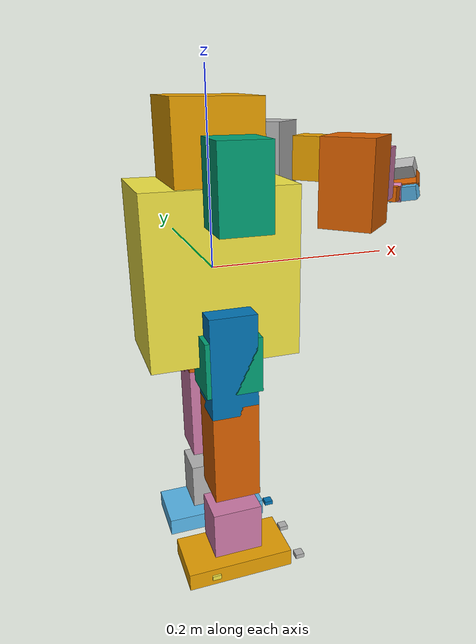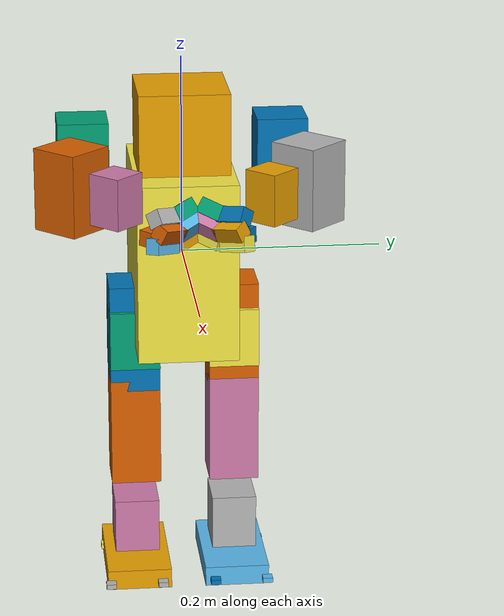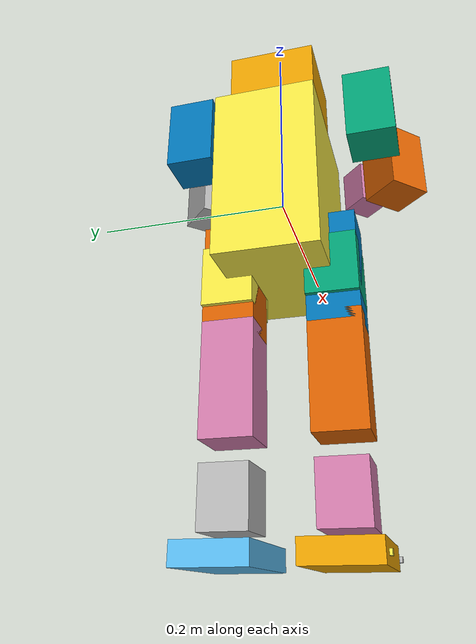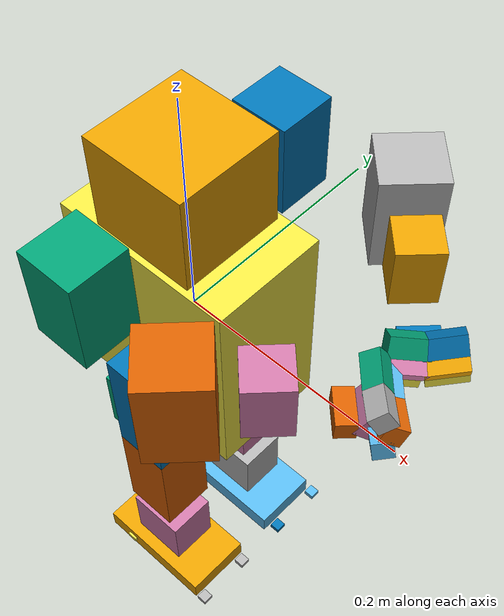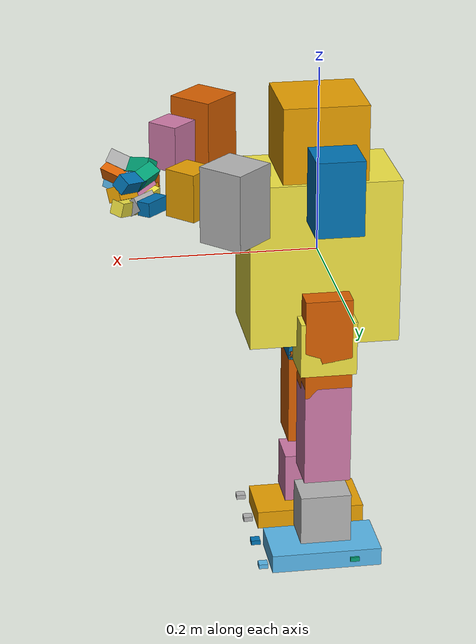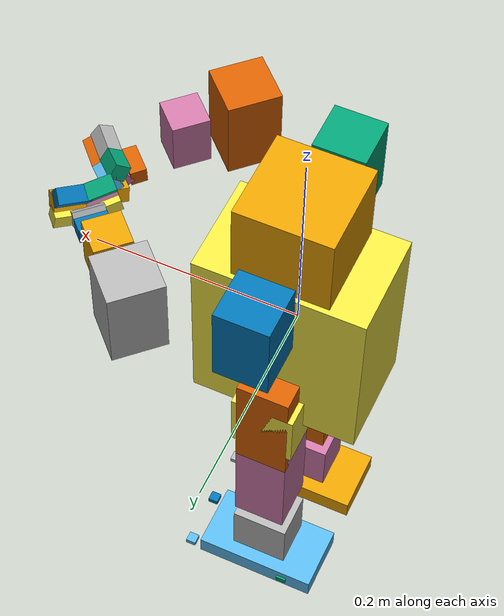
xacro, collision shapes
<?xml version="1.0" ?>
<robot name="nao" xmlns:xacro="http://www.ros.org/wiki/xacro">
  <xacro:arg name="use_gazebo" default="false"/>
  <xacro:include filename="$(find nao_description)/urdf/materials.xacro"/>
  <xacro:include filename="$(find nao_description)/urdf/nao_gazebo.xacro"/>
  <joint name="HeadYaw" type="revolute">
    <parent link="torso"/>
    <child link="Neck"/>
    <origin rpy="0 0 0" xyz="0 0 0.1265"/>
    <axis xyz="0 0 1.0"/>
    <limit effort="1.547" lower="-2.08567" upper="2.08567" velocity="8.26797"/>
    <dynamics damping="0.2" friction="0.05"/>
  </joint>
  <link name="Neck">
    <inertial>
      <mass value="0.1"/>
      <inertia ixx="2.0444274e-05" ixy="2.0020403e-09" ixz="4.0331038e-09" iyy="2.1728386e-05" iyz="-6.7521041e-08" izz="7.0565162e-06"/>
      <origin rpy="0 0 0" xyz="-1e-05 0 -0.02742"/>
    </inertial>
    <visual>
      <geometry>
        <mesh filename="package://nao_description/meshes/visual/HeadYaw.dae" scale="0.1 0.1 0.1"/>
      </geometry>
      <origin rpy="0 0 0" xyz="0 0 0"/>
    </visual>
    <collision>
      <geometry>
        <box size="0.09 0.09 0.09"/>
      </geometry>
      <origin rpy="0 0 0" xyz="0 0 0"/>
    </collision>
  </link>
  <joint name="HeadPitch" type="revolute">
    <parent link="Neck"/>
    <child link="Head"/>
    <origin rpy="0 0 0" xyz="0 0 0"/>
    <axis xyz="0 1.0 0"/>
    <limit effort="1.532" lower="-0.671952" upper="0.514872" velocity="7.19407"/>
    <dynamics damping="0.2" friction="0.05"/>
  </joint>
  <link name="Head">
    <inertial>
      <mass value="0.60533"/>
      <inertia ixx="0.000957766" ixy="8.78814e-06" ixz="5.33702e-06" iyy="0.000816836" iyz="-2.99579e-05" izz="0.000984976"/>
      <origin rpy="0 0 0" xyz="-0.00112 0 0.05258"/>
    </inertial>
    <visual>
      <geometry>
        <mesh filename="package://nao_description/meshes/visual/HeadPitch.dae" scale="0.1 0.1 0.1"/>
      </geometry>
      <origin rpy="0 0 0" xyz="0 0 0"/>
    </visual>
    <collision>
      <geometry>
        <box size="0.09 0.09 0.09"/>
      </geometry>
      <origin rpy="0 0 0" xyz="0 0 0"/>
    </collision>
  </link>
  <joint name="gaze_joint" type="fixed">
    <parent link="Head"/>
    <child link="gaze"/>
    <origin rpy="0 0 0" xyz="0.05871 0 0.06364"/>
  </joint>
  <link name="gaze"/>
  <joint name="LHipYawPitch" type="revolute">
    <parent link="torso"/>
    <child link="LPelvis"/>
    <origin rpy="0 0 0" xyz="0 0.05 -0.085"/>
    <axis xyz="0 0.707106 -0.707106"/>
    <limit effort="3.348" lower="-1.14529" upper="0.740718" velocity="4.16174"/>
    <dynamics damping="0.2" friction="0.05"/>
  </joint>
  <link name="LPelvis">
    <inertial>
      <mass value="0.1"/>
      <inertia ixx="3.352958e-05" ixy="1.545939e-06" ixz="-2.5211718e-06" iyy="6.8235926e-05" iyz="3.9544191e-06" izz="7.1196247e-05"/>
      <origin rpy="0 0 0" xyz="-0.00781 -0.01114 0.02661"/>
    </inertial>
    <visual>
      <geometry>
        <mesh filename="package://nao_description/meshes/visual/LHipYawPitch.dae" scale="0.1 0.1 0.1"/>
      </geometry>
      <origin rpy="0 0 0" xyz="0 0 0"/>
    </visual>
    <collision>
      <geometry>
        <box size="0.06 0.05 0.06"/>
      </geometry>
      <origin rpy="0 0 0" xyz="0 0 0"/>
    </collision>
  </link>
  <joint name="LHipRoll" type="revolute">
    <parent link="LPelvis"/>
    <child link="LHip"/>
    <origin rpy="0 0 0" xyz="0 0 0"/>
    <axis xyz="1.0 0 0"/>
    <limit effort="3.348" lower="-0.379435" upper="0.79046" velocity="4.16174"/>
    <dynamics damping="0.2" friction="0.05"/>
  </joint>
  <link name="LHip">
    <inertial>
      <mass value="0.14053"/>
      <inertia ixx="2.38445e-05" ixy="-6.53605e-07" ixz="7.12893e-06" iyy="6.08246e-05" iyz="-2.14072e-07" izz="5.43691e-05"/>
      <origin rpy="0 0 0" xyz="-0.01549 0.00029 -0.00515"/>
    </inertial>
    <visual>
      <geometry>
        <mesh filename="package://nao_description/meshes/visual/LHipRoll.dae" scale="0.1 0.1 0.1"/>
      </geometry>
      <origin rpy="0 0 0" xyz="0 0 0"/>
    </visual>
    <collision>
      <geometry>
        <box size="0.06 0.05 0.06"/>
      </geometry>
      <origin rpy="0 0 0" xyz="0 0 0"/>
    </collision>
  </link>
  <joint name="LHipPitch" type="revolute">
    <parent link="LHip"/>
    <child link="LThigh"/>
    <origin rpy="0 0 0" xyz="0 0 0"/>
    <axis xyz="0 1.0 0"/>
    <limit effort="3.023" lower="-1.53589" upper="0.48398" velocity="6.40239"/>
    <dynamics damping="0.2" friction="0.05"/>
  </joint>
  <link name="LThigh">
    <inertial>
      <mass value="0.38968"/>
      <inertia ixx="0.000509844" ixy="2.11296e-06" ixz="5.64129e-05" iyy="0.000465358" iyz="-7.91029e-06" izz="0.000301098"/>
      <origin rpy="0 0 0" xyz="0.00138 0.00221 -0.05373"/>
    </inertial>
    <visual>
      <geometry>
        <mesh filename="package://nao_description/meshes/visual/LHipPitch.dae" scale="0.1 0.1 0.1"/>
      </geometry>
      <origin rpy="0 0 0" xyz="0 0 0"/>
    </visual>
    <collision>
      <geometry>
        <box size="0.05 0.05 0.11"/>
      </geometry>
      <origin rpy="0 0 0" xyz="0 0 0"/>
    </collision>
  </link>
  <joint name="LKneePitch" type="revolute">
    <parent link="LThigh"/>
    <child link="LTibia"/>
    <origin rpy="0 0 0" xyz="0 0 -0.1"/>
    <axis xyz="0 1.0 0"/>
    <limit effort="3.023" lower="-0.0923279" upper="2.11255" velocity="6.40239"/>
    <dynamics damping="0.2" friction="0.05"/>
  </joint>
  <link name="LTibia">
    <inertial>
      <mass value="0.30142"/>
      <inertia ixx="0.000446171" ixy="3.70584e-06" ixz="-3.09008e-05" iyy="0.000388084" iyz="6.01953e-06" izz="0.000185516"/>
      <origin rpy="0 0 0" xyz="0.00453 0.00225 -0.04936"/>
    </inertial>
    <visual>
      <geometry>
        <mesh filename="package://nao_description/meshes/visual/LKneePitch.dae" scale="0.1 0.1 0.1"/>
      </geometry>
      <origin rpy="0 0 0" xyz="0 0 0"/>
    </visual>
    <collision>
      <geometry>
        <box size="0.05 0.05 0.11"/>
      </geometry>
      <origin rpy="0 0 0" xyz="0 0 0"/>
    </collision>
  </link>
  <joint name="l_ankle_pitch_joint" type="revolute">
    <parent link="LTibia"/>
    <child link="l_ankle_pitch_link"/>
    <origin rpy="0 0 0" xyz="0 0 -0.1029"/>
    <axis xyz="0 1.0 0"/>
    <limit effort="3.023" lower="-1.18944" upper="0.922581" velocity="6.40239"/>
    <dynamics damping="0.2" friction="0.05"/>
  </joint>
  <link name="l_ankle_pitch_link">
    <inertial>
      <mass value="0.13416"/>
      <inertia ixx="3.22034e-05" ixy="-8.83212e-09" ixz="4.27549e-06" iyy="6.7943e-05" iyz="2.84849e-07" izz="5.48269e-05"/>
      <origin rpy="0 0 0" xyz="0.00045 0.00029 0.00685"/>
    </inertial>
    <visual>
      <geometry>
        <mesh filename="package://nao_description/meshes/visual/LAnklePitch.dae" scale="0.1 0.1 0.1"/>
      </geometry>
      <origin rpy="0 0 0" xyz="0 0 0"/>
    </visual>
    <collision>
      <geometry>
        <box size="0.055 0.045 0.055"/>
      </geometry>
      <origin rpy="0 0 0" xyz="0 0 0"/>
    </collision>
  </link>
  <joint name="LAnkleRoll" type="revolute">
    <parent link="l_ankle_pitch_link"/>
    <child link="l_ankle"/>
    <origin rpy="0 0 0" xyz="0 0 0"/>
    <axis xyz="1.0 0 0"/>
    <limit effort="3.348" lower="-0.397761" upper="0.768992" velocity="4.16174"/>
    <dynamics damping="0.2" friction="0.05"/>
  </joint>
  <link name="l_ankle">
    <inertial>
      <mass value="0.17184"/>
      <inertia ixx="8.72911e-05" ixy="8.71925e-06" ixz="-2.10563e-06" iyy="0.000353024" iyz="3.73459e-07" izz="0.000412846"/>
      <origin rpy="0 0 0" xyz="0.02542 0.0033 -0.03239"/>
    </inertial>
    <visual>
      <geometry>
        <mesh filename="package://nao_description/meshes/visual/LAnkleRoll.dae" scale="0.1 0.1 0.1"/>
      </geometry>
      <origin rpy="0 0 0" xyz="0 0 0"/>
    </visual>
    <collision>
      <geometry>
        <box size="0.055 0.045 0.055"/>
      </geometry>
      <origin rpy="0 0 0" xyz="0 0 0"/>
    </collision>
  </link>
  <joint name="LLeg_effector_fixedjoint" type="fixed">
    <parent link="l_ankle"/>
    <child link="l_sole"/>
    <origin rpy="0 0 0" xyz="0 0 -0.04511"/>
    <axis xyz="0 0 0"/>
  </joint>
  <link name="l_sole">
    <inertial>
      <origin xyz="0 0 0" rpy="0 0 0"/>
      <mass value="0.12"/>
      <inertia ixx="4.625e-05" iyy="0.000148" izz="0.00018625" ixy="0" ixz="0" iyz="0"/>
    </inertial>
    <collision>
      <geometry>
        <box size="0.12 0.065 0.02"/>
      </geometry>
      <origin xyz="0.0 0.0 0.0" rpy="0 0 0"/>
    </collision>
  </link>
  <joint name="RHipYawPitch" type="revolute">
    <parent link="torso"/>
    <child link="RPelvis"/>
    <origin rpy="0 0 0" xyz="0 -0.05 -0.085"/>
    <axis xyz="0 0.707106 0.707106"/>
    <limit effort="3.348" lower="-1.14529" upper="0.740718" velocity="4.16174"/>
    <xacro:unless value="$(arg use_gazebo)">
      <mimic joint="LHipYawPitch" multiplier="1.0" offset="0"/>
    </xacro:unless>
    <dynamics damping="0.2" friction="0.05"/>
  </joint>
  <link name="RPelvis">
    <inertial>
      <mass value="0.1"/>
      <inertia ixx="4.566194e-05" ixy="-1.534909e-06" ixz="-2.5396791e-06" iyy="7.4253116e-05" iyz="-1.0036728e-05" izz="7.7303681e-05"/>
      <origin rpy="0 0 0" xyz="-0.00781 0.01114 0.02661"/>
    </inertial>
    <visual>
      <geometry>
        <mesh filename="package://nao_description/meshes/visual/RHipYawPitch.dae" scale="0.1 0.1 0.1"/>
      </geometry>
      <origin rpy="0 0 0" xyz="0 0 0"/>
    </visual>
    <collision>
      <geometry>
        <box size="0.06 0.05 0.06"/>
      </geometry>
      <origin rpy="0 0 0" xyz="0 0 0"/>
    </collision>
  </link>
  <joint name="RHipRoll" type="revolute">
    <parent link="RPelvis"/>
    <child link="RHip"/>
    <origin rpy="0 0 0" xyz="0 0 0"/>
    <axis xyz="1.0 0 0"/>
    <limit effort="3.348" lower="-0.79046" upper="0.379435" velocity="4.16174"/>
    <dynamics damping="0.2" friction="0.05"/>
  </joint>
  <link name="RHip">
    <inertial>
      <mass value="0.14053"/>
      <inertia ixx="2.38475e-05" ixy="6.12085e-07" ixz="7.10235e-06" iyy="6.0824e-05" iyz="2.12392e-07" izz="5.43727e-05"/>
      <origin rpy="0 0 0" xyz="-0.01549 -0.00029 -0.00515"/>
    </inertial>
    <visual>
      <geometry>
        <mesh filename="package://nao_description/meshes/visual/RHipRoll.dae" scale="0.1 0.1 0.1"/>
      </geometry>
      <origin rpy="0 0 0" xyz="0 0 0"/>
    </visual>
    <collision>
      <geometry>
        <box size="0.06 0.05 0.06"/>
      </geometry>
      <origin rpy="0 0 0" xyz="0 0 0"/>
    </collision>
  </link>
  <joint name="RHipPitch" type="revolute">
    <parent link="RHip"/>
    <child link="RThigh"/>
    <origin rpy="0 0 0" xyz="0 0 0"/>
    <axis xyz="0 1.0 0"/>
    <limit effort="3.0226" lower="-1.53589" upper="0.48398" velocity="6.40239"/>
    <dynamics damping="0.2" friction="0.05"/>
  </joint>
  <link name="RThigh">
    <inertial>
      <mass value="0.38968"/>
      <inertia ixx="0.000510607" ixy="-2.02799e-06" ixz="5.69893e-05" iyy="0.0004665" iyz="7.09563e-06" izz="0.000301333"/>
      <origin rpy="0 0 0" xyz="0.00138 -0.00221 -0.05373"/>
    </inertial>
    <visual>
      <geometry>
        <mesh filename="package://nao_description/meshes/visual/RHipPitch.dae" scale="0.1 0.1 0.1"/>
      </geometry>
      <origin rpy="0 0 0" xyz="0 0 0"/>
    </visual>
    <collision>
      <geometry>
        <box size="0.05 0.05 0.11"/>
      </geometry>
      <origin rpy="0 0 0" xyz="0 0 0"/>
    </collision>
  </link>
  <joint name="RKneePitch" type="revolute">
    <parent link="RThigh"/>
    <child link="RTibia"/>
    <origin rpy="0 0 0" xyz="0 0 -0.1"/>
    <axis xyz="0 1.0 0"/>
    <limit effort="3.0226" lower="-0.0923279" upper="2.11255" velocity="6.40239"/>
    <dynamics damping="0.2" friction="0.05"/>
  </joint>
  <link name="RTibia">
    <inertial>
      <mass value="0.30142"/>
      <inertia ixx="0.000446921" ixy="-3.96872e-06" ixz="-3.94009e-05" iyy="0.000387711" iyz="-5.00034e-06" izz="0.000183741"/>
      <origin rpy="0 0 0" xyz="0.00453 -0.00225 -0.04936"/>
    </inertial>
    <visual>
      <geometry>
        <mesh filename="package://nao_description/meshes/visual/RKneePitch.dae" scale="0.1 0.1 0.1"/>
      </geometry>
      <origin rpy="0 0 0" xyz="0 0 0"/>
    </visual>
    <collision>
      <geometry>
        <box size="0.05 0.05 0.11"/>
      </geometry>
      <origin rpy="0 0 0" xyz="0 0 0"/>
    </collision>
  </link>
  <joint name="r_ankle_pitch_joint" type="revolute">
    <parent link="RTibia"/>
    <child link="r_ankle_pitch_link"/>
    <origin rpy="0 0 0" xyz="0 0 -0.1029"/>
    <axis xyz="0 1.0 0"/>
    <limit effort="3.0226" lower="-1.1863" upper="0.932006" velocity="6.40239"/>
    <dynamics damping="0.2" friction="0.05"/>
  </joint>
  <link name="r_ankle_pitch_link">
    <inertial>
      <mass value="0.13416"/>
      <inertia ixx="3.22017e-05" ixy="4.68321e-08" ixz="4.28821e-06" iyy="6.79885e-05" iyz="-2.71089e-07" izz="5.48747e-05"/>
      <origin rpy="0 0 0" xyz="0.00045 -0.00029 0.00685"/>
    </inertial>
    <visual>
      <geometry>
        <mesh filename="package://nao_description/meshes/visual/RAnklePitch.dae" scale="0.1 0.1 0.1"/>
      </geometry>
      <origin rpy="0 0 0" xyz="0 0 0"/>
    </visual>
    <collision>
      <geometry>
        <box size="0.055 0.045 0.055"/>
      </geometry>
      <origin rpy="0 0 0" xyz="0 0 0"/>
    </collision>
  </link>
  <joint name="RAnkleRoll" type="revolute">
    <parent link="r_ankle_pitch_link"/>
    <child link="r_ankle"/>
    <origin rpy="0 0 0" xyz="0 0 0"/>
    <axis xyz="1.0 0 0"/>
    <limit effort="3.348" lower="-0.768992" upper="0.397761" velocity="4.16174"/>
    <dynamics damping="0.2" friction="0.05"/>
  </joint>
  <link name="r_ankle">
    <inertial>
      <mass value="0.17184"/>
      <inertia ixx="8.71513e-05" ixy="-8.53992e-06" ixz="-2.35184e-06" iyy="0.000352156" iyz="-4.81708e-07" izz="0.000412125"/>
      <origin rpy="0 0 0" xyz="0.02542 -0.0033 -0.03239"/>
    </inertial>
    <visual>
      <geometry>
        <mesh filename="package://nao_description/meshes/visual/RAnkleRoll.dae" scale="0.1 0.1 0.1"/>
      </geometry>
      <origin rpy="0 0 0" xyz="0 0 0"/>
    </visual>
    <collision>
      <geometry>
        <box size="0.055 0.045 0.055"/>
      </geometry>
      <origin rpy="0 0 0" xyz="0 0 0"/>
    </collision>
  </link>
  <joint name="RLeg_effector_fixedjoint" type="fixed">
    <parent link="r_ankle"/>
    <child link="r_sole"/>
    <origin rpy="0 0 0" xyz="0 0 -0.04511"/>
    <axis xyz="0 0 0"/>
  </joint>
  <link name="r_sole">
    <inertial>
      <origin xyz="0 0 0" rpy="0 0 0"/>
      <mass value="0.12"/>
      <inertia ixx="4.625e-05" iyy="0.000148" izz="0.00018625" ixy="0" ixz="0" iyz="0"/>
    </inertial>
    <collision>
      <geometry>
        <box size="0.12 0.065 0.02"/>
      </geometry>
      <origin xyz="0.0 0.0 0.0" rpy="0 0 0"/>
    </collision>
  </link>
  <!-- Keep a fixed world joint only outside Gazebo.
       In Gazebo, base_link becomes the free root link for physical walking. -->
  <xacro:unless value="$(arg use_gazebo)">
    <link name="world"/>
    <joint name="world_base_link_joint" type="fixed">
      <parent link="world"/>
      <child link="base_link"/>
      <origin rpy="0 0 0" xyz="0 0 0"/>
    </joint>
  </xacro:unless>

  <link name="base_link">
    <inertial>
      <origin xyz="0 0 0" rpy="0 0 0"/>
      <mass value="0.12"/>
      <inertia ixx="3.2e-05" iyy="3.2e-05" izz="3.2e-05" ixy="0" ixz="0" iyz="0"/>
    </inertial>
  </link>
  <joint name="base_link_fixedjoint" type="fixed">
    <parent link="base_link"/>
    <child link="torso"/>
    <origin rpy="0 0 0" xyz="0 0 0"/>
    <axis xyz="0 0 0"/>
  </joint>
  <link name="torso">
    <inertial>
      <mass value="1.04956"/>
      <inertia ixx="0.00308361" ixy="1.43116e-05" ixz="-3.30211e-05" iyy="0.0028835" iyz="-2.70793e-05" izz="0.0015924"/>
      <origin rpy="0 0 0" xyz="-0.00413 0 0.04342"/>
    </inertial>
    <visual>
      <geometry>
        <mesh filename="package://nao_description/meshes/visual/Torso.dae" scale="0.1 0.1 0.1"/>
      </geometry>
      <origin rpy="0 0 0" xyz="0 0 0"/>
    </visual>
    <collision>
      <geometry>
        <box size="0.16 0.1 0.18"/>
      </geometry>
      <origin rpy="0 0 0" xyz="0 0 0"/>
    </collision>
  </link>
  <joint name="LShoulderPitch" type="revolute">
    <parent link="torso"/>
    <child link="LShoulder"/>
    <origin rpy="0 0 0" xyz="0 0.098 0.1"/>
    <axis xyz="0 1.0 0"/>
    <limit effort="1.329" lower="-2.08567" upper="2.08567" velocity="8.26797"/>
    <dynamics damping="0.2" friction="0.05"/>
  </joint>
  <link name="LShoulder">
    <inertial>
      <mass value="0.1"/>
      <inertia ixx="1.9671647e-05" ixy="2.2142197e-06" ixz="2.0289768e-09" iyy="1.4940348e-05" iyz="-3.9401548e-07" izz="2.169626e-05"/>
      <origin rpy="0 0 0" xyz="-0.00165 -0.02663 0.00014"/>
    </inertial>
    <visual>
      <geometry>
        <mesh filename="package://nao_description/meshes/visual/LShoulderPitch.dae" scale="0.1 0.1 0.1"/>
      </geometry>
      <origin rpy="0 0 0" xyz="0 0 0"/>
    </visual>
    <collision>
      <geometry>
        <box size="0.05 0.05 0.08"/>
      </geometry>
      <origin rpy="0 0 0" xyz="0 0 0"/>
    </collision>
  </link>
  <joint name="LShoulderRoll" type="revolute">
    <parent link="LShoulder"/>
    <child link="LBicep"/>
    <origin rpy="0 0 0" xyz="0 0 0"/>
    <axis xyz="0 0 1.0"/>
    <limit effort="1.7835" lower="-0.314159" upper="1.32645" velocity="7.19407"/>
    <dynamics damping="0.2" friction="0.05"/>
  </joint>
  <link name="LBicep">
    <inertial>
      <mass value="0.15777"/>
      <inertia ixx="8.7181e-05" ixy="-2.53381e-05" ixz="-1.4213e-05" iyy="0.000274712" iyz="4.71439e-07" izz="0.000241812"/>
      <origin rpy="0 0 0" xyz="0.02455 0.00563 0.0033"/>
    </inertial>
    <visual>
      <geometry>
        <mesh filename="package://nao_description/meshes/visual/LShoulderRoll.dae" scale="0.1 0.1 0.1"/>
      </geometry>
      <origin rpy="0 0 0" xyz="0 0 0"/>
    </visual>
    <collision>
      <geometry>
        <box size="0.05 0.05 0.08"/>
      </geometry>
      <origin rpy="0 0 0" xyz="0 0 0"/>
    </collision>
  </link>
  <joint name="LElbowYaw" type="revolute">
    <parent link="LBicep"/>
    <child link="LElbow"/>
    <origin rpy="0 0 0" xyz="0.105 0.015 0"/>
    <axis xyz="1.0 0 0"/>
    <limit effort="1.547" lower="-2.08567" upper="2.08567" velocity="8.26797"/>
    <dynamics damping="0.2" friction="0.05"/>
  </joint>
  <link name="LElbow">
    <inertial>
      <mass value="0.1"/>
      <inertia ixx="8.6316212e-06" ixy="6.4939071e-09" ixz="4.507805e-07" iyy="4.1057998e-05" iyz="-2.8381922e-09" izz="4.2618232e-05"/>
      <origin rpy="0 0 0" xyz="-0.02744 0 -0.00014"/>
    </inertial>
  </link>
  <joint name="LElbowRoll" type="revolute">
    <parent link="LElbow"/>
    <child link="LForeArm"/>
    <origin rpy="0 0 0" xyz="0 0 0"/>
    <axis xyz="0 0 1.0"/>
    <limit effort="1.532" lower="-1.54462" upper="-0.0349066" velocity="7.19407"/>
    <dynamics damping="0.2" friction="0.05"/>
  </joint>
  <link name="LForeArm">
    <inertial>
      <mass value="0.1"/>
      <inertia ixx="3.1793068e-05" ixy="4.1637933e-06" ixz="2.0386677e-06" iyy="4.9457158e-05" iyz="1.793506e-07" izz="4.6348151e-05"/>
      <origin rpy="0 0 0" xyz="0.02556 0.00281 0.00076"/>
    </inertial>
    <visual>
      <geometry>
        <mesh filename="package://nao_description/meshes/visual/LElbowRoll.dae" scale="0.1 0.1 0.1"/>
      </geometry>
      <origin rpy="0 0 0" xyz="0 0 0"/>
    </visual>
    <collision>
      <geometry>
        <box size="0.05 0.05 0.08"/>
      </geometry>
      <origin rpy="0 0 0" xyz="0 0 0"/>
    </collision>
  </link>
  <joint name="LWristYaw" type="revolute">
    <parent link="LForeArm"/>
    <child link="l_wrist"/>
    <origin rpy="0 0 0" xyz="0.05595 0 0"/>
    <axis xyz="1.0 0 0"/>
    <limit effort="0.4075" lower="-1.82387" upper="1.82387" velocity="24.6229"/>
    <dynamics damping="0.2" friction="0.05"/>
  </joint>
  <link name="l_wrist">
    <inertial>
      <mass value="0.18533"/>
      <inertia ixx="6.86477e-05" ixy="1.15465e-07" ixz="-2.87254e-06" iyy="0.000135756" iyz="2.67539e-06" izz="0.000133228"/>
      <origin rpy="0 0 0" xyz="0.03434 -0.00088 0.00308"/>
    </inertial>
    <visual>
      <geometry>
        <mesh filename="package://nao_description/meshes/visual/LWristYaw.dae" scale="0.1 0.1 0.1"/>
      </geometry>
      <origin rpy="0 0 0" xyz="0 0 0"/>
    </visual>
    <collision>
      <geometry>
        <box size="0.035 0.035 0.05"/>
      </geometry>
      <origin rpy="0 0 0" xyz="0 0 0"/>
    </collision>
  </link>
  <joint name="LHand" type="revolute">
    <parent link="l_wrist"/>
    <child link="l_gripper"/>
    <origin rpy="0 0 0" xyz="0.05775 0 -0.01231"/>
    <axis xyz="1.0 0 0"/>
    <limit effort="0.292" lower="0" upper="1.0" velocity="8.33"/>
    <dynamics damping="0.2" friction="0.05"/>
  </joint>
  <link name="l_gripper">
    <inertial>
      <mass value="0.1"/>
      <inertia ixx="5.5e-05" ixy="0" ixz="0" iyy="5.5e-05" iyz="0" izz="5.5e-05"/>
    </inertial>
  </link>
  <joint name="RShoulderPitch" type="revolute">
    <parent link="torso"/>
    <child link="RShoulder"/>
    <origin rpy="0 0 0" xyz="0 -0.098 0.1"/>
    <axis xyz="0 1.0 0"/>
    <limit effort="1.329" lower="-2.08567" upper="2.08567" velocity="8.26797"/>
    <dynamics damping="0.2" friction="0.05"/>
  </joint>
  <link name="RShoulder">
    <inertial>
      <mass value="0.1"/>
      <inertia ixx="1.9671647e-05" ixy="-2.2142197e-06" ixz="2.0289768e-09" iyy="1.4940348e-05" iyz="3.9401548e-07" izz="2.169626e-05"/>
      <origin rpy="0 0 0" xyz="-0.00165 0.02663 0.00014"/>
    </inertial>
    <visual>
      <geometry>
        <mesh filename="package://nao_description/meshes/visual/RShoulderPitch.dae" scale="0.1 0.1 0.1"/>
      </geometry>
      <origin rpy="0 0 0" xyz="0 0 0"/>
    </visual>
    <collision>
      <geometry>
        <box size="0.05 0.05 0.08"/>
      </geometry>
      <origin rpy="0 0 0" xyz="0 0 0"/>
    </collision>
  </link>
  <joint name="RShoulderRoll" type="revolute">
    <parent link="RShoulder"/>
    <child link="RBicep"/>
    <origin rpy="0 0 0" xyz="0 0 0"/>
    <axis xyz="0 0 1.0"/>
    <limit effort="1.783" lower="-1.32645" upper="0.314159" velocity="7.19407"/>
    <dynamics damping="0.2" friction="0.05"/>
  </joint>
  <link name="RBicep">
    <inertial>
      <mass value="0.15777"/>
      <inertia ixx="0.000103401" ixy="5.48849e-05" ixz="-1.32643e-05" iyy="0.00027077" iyz="9.16707e-06" izz="0.000254529"/>
      <origin rpy="0 0 0" xyz="0.02455 -0.00563 0.0033"/>
    </inertial>
    <visual>
      <geometry>
        <mesh filename="package://nao_description/meshes/visual/RShoulderRoll.dae" scale="0.1 0.1 0.1"/>
      </geometry>
      <origin rpy="0 0 0" xyz="0 0 0"/>
    </visual>
    <collision>
      <geometry>
        <box size="0.05 0.05 0.08"/>
      </geometry>
      <origin rpy="0 0 0" xyz="0 0 0"/>
    </collision>
  </link>
  <joint name="RElbowYaw" type="revolute">
    <parent link="RBicep"/>
    <child link="RElbow"/>
    <origin rpy="0 0 0" xyz="0.105 -0.015 0"/>
    <axis xyz="1.0 0 0"/>
    <limit effort="1.547" lower="-2.08567" upper="2.08567" velocity="8.26797"/>
    <dynamics damping="0.2" friction="0.05"/>
  </joint>
  <link name="RElbow">
    <inertial>
      <mass value="0.1"/>
      <inertia ixx="8.6316212e-06" ixy="6.4939071e-09" ixz="4.507805e-07" iyy="4.1057998e-05" iyz="-2.8381922e-09" izz="4.2618232e-05"/>
      <origin rpy="0 0 0" xyz="-0.02744 0 -0.00014"/>
    </inertial>
  </link>
  <joint name="RElbowRoll" type="revolute">
    <parent link="RElbow"/>
    <child link="RForeArm"/>
    <origin rpy="0 0 0" xyz="0 0 0"/>
    <axis xyz="0 0 1.0"/>
    <limit effort="1.532" lower="0.0349066" upper="1.54462" velocity="7.19407"/>
    <dynamics damping="0.2" friction="0.05"/>
  </joint>
  <link name="RForeArm">
    <inertial>
      <mass value="0.1"/>
      <inertia ixx="3.1868445e-05" ixy="-4.177039e-06" ixz="1.1679564e-06" iyy="4.9570803e-05" iyz="-1.7884809e-07" izz="4.6298029e-05"/>
      <origin rpy="0 0 0" xyz="0.02556 -0.00281 0.00076"/>
    </inertial>
    <visual>
      <geometry>
        <mesh filename="package://nao_description/meshes/visual/RElbowRoll.dae" scale="0.1 0.1 0.1"/>
      </geometry>
      <origin rpy="0 0 0" xyz="0 0 0"/>
    </visual>
    <collision>
      <geometry>
        <box size="0.05 0.05 0.08"/>
      </geometry>
      <origin rpy="0 0 0" xyz="0 0 0"/>
    </collision>
  </link>
  <joint name="RWristYaw" type="revolute">
    <parent link="RForeArm"/>
    <child link="r_wrist"/>
    <origin rpy="0 0 0" xyz="0.05595 0 0"/>
    <axis xyz="1.0 0 0"/>
    <limit effort="0.4075" lower="-1.82387" upper="1.82387" velocity="24.6229"/>
    <dynamics damping="0.2" friction="0.05"/>
  </joint>
  <link name="r_wrist">
    <inertial>
      <mass value="0.18533"/>
      <inertia ixx="6.86477e-05" ixy="1.13165e-05" ixz="-2.87254e-06" iyy="0.000135756" iyz="3.68003e-06" izz="0.000133228"/>
      <origin rpy="0 0 0" xyz="0.03434 0.00088 0.00308"/>
    </inertial>
    <visual>
      <geometry>
        <mesh filename="package://nao_description/meshes/visual/RWristYaw.dae" scale="0.1 0.1 0.1"/>
      </geometry>
      <origin rpy="0 0 0" xyz="0 0 0"/>
    </visual>
    <collision>
      <geometry>
        <box size="0.035 0.035 0.05"/>
      </geometry>
      <origin rpy="0 0 0" xyz="0 0 0"/>
    </collision>
  </link>
  <joint name="RHand" type="revolute">
    <parent link="r_wrist"/>
    <child link="r_gripper"/>
    <origin rpy="0 0 0" xyz="0.05775 0 -0.01213"/>
    <axis xyz="1.0 0 0"/>
    <limit effort="0.292" lower="0" upper="1.0" velocity="8.33"/>
    <dynamics damping="0.2" friction="0.05"/>
  </joint>
  <link name="r_gripper">
    <inertial>
      <mass value="0.1"/>
      <inertia ixx="5.5e-05" ixy="0" ixz="0" iyy="5.5e-05" iyz="0" izz="5.5e-05"/>
    </inertial>
  </link>
  <link name="LFootBumperRight_frame"/>
  <joint name="LFoot/Bumper/Right_sensor_fixedjoint" type="fixed">
    <parent link="l_ankle"/>
    <child link="LFootBumperRight_frame"/>
    <origin rpy="0 0 0" xyz="0.0876 -0.014 -0.0353"/>
    <axis xyz="0 0 0"/>
  </joint>
  <link name="RFsrRL_frame">
    <collision>
      <geometry>
        <box size="0.01 0.01 0.005"/>
      </geometry>
      <origin rpy="0 0 0" xyz="0 0 0"/>
    </collision>
    <inertial>
      <mass value="0.1"/>
      <inertia ixx="5.5e-05" ixy="0" ixz="0" iyy="5.5e-05" iyz="0" izz="5.5e-05"/>
    </inertial>
  </link>
  <joint name="RFoot/FSR/RearLeft_sensor_fixedjoint" type="fixed">
    <parent link="r_ankle"/>
    <child link="RFsrRL_frame"/>
    <origin rpy="0 0 0" xyz="-0.03025 0.0191 -0.04511"/>
    <axis xyz="0 0 0"/>
  </joint>
  <link name="CameraBottom_optical_frame"/>
  <joint name="CameraBottom_optical_frame_fixedjoint" type="fixed">
    <parent link="CameraBottom_frame"/>
    <child link="CameraBottom_optical_frame"/>
    <origin rpy="-1.57079632679 0 -1.57079632679" xyz="0 0 0"/>
  </joint>
  <link name="RFsrRR_frame">
    <collision>
      <geometry>
        <box size="0.01 0.01 0.005"/>
      </geometry>
      <origin rpy="0 0 0" xyz="0 0 0"/>
    </collision>
    <inertial>
      <mass value="0.1"/>
      <inertia ixx="5.5e-05" ixy="0" ixz="0" iyy="5.5e-05" iyz="0" izz="5.5e-05"/>
    </inertial>
  </link>
  <joint name="RFoot/FSR/RearRight_sensor_fixedjoint" type="fixed">
    <parent link="r_ankle"/>
    <child link="RFsrRR_frame"/>
    <origin rpy="0 0 0" xyz="-0.02965 -0.0299 -0.04511"/>
    <axis xyz="0 0 0"/>
  </joint>
  <link name="LFsrFR_frame">
    <collision>
      <geometry>
        <box size="0.01 0.01 0.005"/>
      </geometry>
      <origin rpy="0 0 0" xyz="0 0 0"/>
    </collision>
    <inertial>
      <mass value="0.1"/>
      <inertia ixx="5.5e-05" ixy="0" ixz="0" iyy="5.5e-05" iyz="0" izz="5.5e-05"/>
    </inertial>
  </link>
  <joint name="LFoot/FSR/FrontRight_sensor_fixedjoint" type="fixed">
    <parent link="l_ankle"/>
    <child link="LFsrFR_frame"/>
    <origin rpy="0 0 0" xyz="0.07025 -0.0231 -0.04511"/>
    <axis xyz="0 0 0"/>
  </joint>
  <link name="LHandTouchLeft_frame"/>
  <joint name="LHand/Touch/Left_sensor_fixedjoint" type="fixed">
    <parent link="l_wrist"/>
    <child link="LHandTouchLeft_frame"/>
    <origin rpy="0 0 1.5708" xyz="0.032 0.025 0.003"/>
    <axis xyz="0 0 0"/>
  </joint>
  <link name="RFootBumperRight_frame"/>
  <joint name="RFoot/Bumper/Right_sensor_fixedjoint" type="fixed">
    <parent link="r_ankle"/>
    <child link="RFootBumperRight_frame"/>
    <origin rpy="0 0 0" xyz="0.0876 -0.019 -0.0353"/>
    <axis xyz="0 0 0"/>
  </joint>
  <link name="RFsrFR_frame">
    <collision>
      <geometry>
        <box size="0.01 0.01 0.005"/>
      </geometry>
      <origin rpy="0 0 0" xyz="0 0 0"/>
    </collision>
    <inertial>
      <mass value="0.1"/>
      <inertia ixx="5.5e-05" ixy="0" ixz="0" iyy="5.5e-05" iyz="0" izz="5.5e-05"/>
    </inertial>
  </link>
  <joint name="RFoot/FSR/FrontRight_sensor_fixedjoint" type="fixed">
    <parent link="r_ankle"/>
    <child link="RFsrFR_frame"/>
    <origin rpy="0 0 0" xyz="0.07025 -0.0299 -0.04511"/>
    <axis xyz="0 0 0"/>
  </joint>
  <link name="LFsrRR_frame">
    <collision>
      <geometry>
        <box size="0.01 0.01 0.005"/>
      </geometry>
      <origin rpy="0 0 0" xyz="0 0 0"/>
    </collision>
    <inertial>
      <mass value="0.1"/>
      <inertia ixx="5.5e-05" ixy="0" ixz="0" iyy="5.5e-05" iyz="0" izz="5.5e-05"/>
    </inertial>
  </link>
  <joint name="LFoot/FSR/RearRight_sensor_fixedjoint" type="fixed">
    <parent link="l_ankle"/>
    <child link="LFsrRR_frame"/>
    <origin rpy="0 0 0" xyz="-0.02965 -0.0191 -0.04511"/>
    <axis xyz="0 0 0"/>
  </joint>
  <link name="ImuTorsoAccelerometer_frame"/>
  <joint name="Accelerometer_sensor_fixedjoint" type="fixed">
    <parent link="torso"/>
    <child link="ImuTorsoAccelerometer_frame"/>
    <origin rpy="0 0 0" xyz="-0.008 0.00606 0.027"/>
    <axis xyz="0 0 0"/>
  </joint>
  <link name="HeadTouchFront_frame"/>
  <joint name="Head/Touch/Front_sensor_fixedjoint" type="fixed">
    <parent link="Head"/>
    <child link="HeadTouchFront_frame"/>
    <origin rpy="0 -1.1861 0" xyz="0.0312 0 0.1014"/>
    <axis xyz="0 0 0"/>
  </joint>
  <link name="RFootBumperLeft_frame"/>
  <joint name="RFoot/Bumper/Left_sensor_fixedjoint" type="fixed">
    <parent link="r_ankle"/>
    <child link="RFootBumperLeft_frame"/>
    <origin rpy="0 0 0" xyz="0.0876 0.014 -0.0353"/>
    <axis xyz="0 0 0"/>
  </joint>
  <link name="RSonar_frame"/>
  <joint name="Sonar/Right_sensor_fixedjoint" type="fixed">
    <parent link="torso"/>
    <child link="RSonar_frame"/>
    <origin rpy="0.00478508 0.0436497 -0.392441" xyz="0.00558253 -0.0192068 0.0623853"/>
    <axis xyz="0 0 0"/>
  </joint>
  <link name="RHandTouchRight_frame"/>
  <joint name="RHand/Touch/Right_sensor_fixedjoint" type="fixed">
    <parent link="r_wrist"/>
    <child link="RHandTouchRight_frame"/>
    <origin rpy="0 0 -1.5708" xyz="0.035 -0.025 0.0035"/>
    <axis xyz="0 0 0"/>
  </joint>
  <link name="RHandTouchBack_frame"/>
  <joint name="RHand/Touch/Back_sensor_fixedjoint" type="fixed">
    <parent link="r_wrist"/>
    <child link="RHandTouchBack_frame"/>
    <origin rpy="3.14159 -1.5708 3.14159" xyz="0.038 0 0.025"/>
    <axis xyz="0 0 0"/>
  </joint>
  <link name="RFsrFL_frame">
    <collision>
      <geometry>
        <box size="0.01 0.01 0.005"/>
      </geometry>
      <origin rpy="0 0 0" xyz="0 0 0"/>
    </collision>
    <inertial>
      <mass value="0.1"/>
      <inertia ixx="5.5e-05" ixy="0" ixz="0" iyy="5.5e-05" iyz="0" izz="5.5e-05"/>
    </inertial>
  </link>
  <joint name="RFoot/FSR/FrontLeft_sensor_fixedjoint" type="fixed">
    <parent link="r_ankle"/>
    <child link="RFsrFL_frame"/>
    <origin rpy="0 0 0" xyz="0.07025 0.0231 -0.04511"/>
    <axis xyz="0 0 0"/>
  </joint>
  <link name="LSonar_frame"/>
  <joint name="Sonar/Left_sensor_fixedjoint" type="fixed">
    <parent link="torso"/>
    <child link="LSonar_frame"/>
    <origin rpy="-0.00478508 0.0436497 0.392441" xyz="0.00558253 0.0192068 0.0623853"/>
    <axis xyz="0 0 0"/>
  </joint>
  <link name="LFsrFL_frame">
    <collision>
      <geometry>
        <box size="0.01 0.01 0.005"/>
      </geometry>
      <origin rpy="0 0 0" xyz="0 0 0"/>
    </collision>
    <inertial>
      <mass value="0.1"/>
      <inertia ixx="5.5e-05" ixy="0" ixz="0" iyy="5.5e-05" iyz="0" izz="5.5e-05"/>
    </inertial>
  </link>
  <joint name="LFoot/FSR/FrontLeft_sensor_fixedjoint" type="fixed">
    <parent link="l_ankle"/>
    <child link="LFsrFL_frame"/>
    <origin rpy="0 0 0" xyz="0.07025 0.0299 -0.04511"/>
    <axis xyz="0 0 0"/>
  </joint>
  <link name="LFsrRL_frame">
    <collision>
      <geometry>
        <box size="0.01 0.01 0.005"/>
      </geometry>
      <origin rpy="0 0 0" xyz="0 0 0"/>
    </collision>
    <inertial>
      <mass value="0.1"/>
      <inertia ixx="5.5e-05" ixy="0" ixz="0" iyy="5.5e-05" iyz="0" izz="5.5e-05"/>
    </inertial>
  </link>
  <joint name="LFoot/FSR/RearLeft_sensor_fixedjoint" type="fixed">
    <parent link="l_ankle"/>
    <child link="LFsrRL_frame"/>
    <origin rpy="0 0 0" xyz="-0.03025 0.0299 -0.04511"/>
    <axis xyz="0 0 0"/>
  </joint>
  <link name="RHandTouchLeft_frame"/>
  <joint name="RHand/Touch/Left_sensor_fixedjoint" type="fixed">
    <parent link="r_wrist"/>
    <child link="RHandTouchLeft_frame"/>
    <origin rpy="0 0 1.5708" xyz="0.032 0.025 0.003"/>
    <axis xyz="0 0 0"/>
  </joint>
  <link name="CameraBottom_frame"/>
  <joint name="CameraBottom_sensor_fixedjoint" type="fixed">
    <parent link="Head"/>
    <child link="CameraBottom_frame"/>
    <origin rpy="0 0.692896 0" xyz="0.05071 0 0.01774"/>
    <axis xyz="0 0 0"/>
  </joint>
  <link name="CameraTop_frame"/>
  <joint name="CameraTop_sensor_fixedjoint" type="fixed">
    <parent link="Head"/>
    <child link="CameraTop_frame"/>
    <origin rpy="0 0.0209435 0" xyz="0.05871 0 0.06364"/>
    <axis xyz="0 0 0"/>
  </joint>
  <link name="CameraTop_optical_frame"/>
  <joint name="CameraTop_optical_frame_fixedjoint" type="fixed">
    <parent link="CameraTop_frame"/>
    <child link="CameraTop_optical_frame"/>
    <origin rpy="-1.57079632679 0 -1.57079632679" xyz="0 0 0"/>
  </joint>
  <link name="LHandTouchBack_frame"/>
  <joint name="LHand/Touch/Back_sensor_fixedjoint" type="fixed">
    <parent link="l_wrist"/>
    <child link="LHandTouchBack_frame"/>
    <origin rpy="3.14159 -1.5708 3.14159" xyz="0.038 0 0.025"/>
    <axis xyz="0 0 0"/>
  </joint>
  <link name="LInfraRed_frame"/>
  <joint name="InfraredL_sensor_fixedjoint" type="fixed">
    <parent link="Head"/>
    <child link="LInfraRed_frame"/>
    <origin rpy="0 0 0" xyz="0.0441 0.0257 0.0466"/>
    <axis xyz="0 0 0"/>
  </joint>
  <link name="ImuTorsoGyrometer_frame"/>
  <joint name="Gyrometer_sensor_fixedjoint" type="fixed">
    <parent link="torso"/>
    <child link="ImuTorsoGyrometer_frame"/>
    <origin rpy="0 0 0" xyz="-0.008 0.006 0.029"/>
    <axis xyz="0 0 0"/>
  </joint>
  <link name="HeadTouchRear_frame"/>
  <joint name="Head/Touch/Rear_sensor_fixedjoint" type="fixed">
    <parent link="Head"/>
    <child link="HeadTouchRear_frame"/>
    <origin rpy="3.14159 -1.33319 -3.14159" xyz="-0.0257 0 0.1045"/>
    <axis xyz="0 0 0"/>
  </joint>
  <link name="HeadTouchMiddle_frame"/>
  <joint name="Head/Touch/Middle_sensor_fixedjoint" type="fixed">
    <parent link="Head"/>
    <child link="HeadTouchMiddle_frame"/>
    <origin rpy="3.14159 -1.57079 -3.14159" xyz="0.001 0 0.1099"/>
    <axis xyz="0 0 0"/>
  </joint>
  <link name="RInfraRed_frame"/>
  <joint name="InfraredR_sensor_fixedjoint" type="fixed">
    <parent link="Head"/>
    <child link="RInfraRed_frame"/>
    <origin rpy="0 0 0" xyz="0.0441 -0.0257 0.0466"/>
    <axis xyz="0 0 0"/>
  </joint>
  <link name="ChestButton_frame"/>
  <joint name="ChestBoard/Button_sensor_fixedjoint" type="fixed">
    <parent link="torso"/>
    <child link="ChestButton_frame"/>
    <origin rpy="0 0 0" xyz="0.049871 0.001588 0.055163"/>
    <axis xyz="0 0 0"/>
  </joint>
  <link name="LFootBumperLeft_frame"/>
  <joint name="LFoot/Bumper/Left_sensor_fixedjoint" type="fixed">
    <parent link="l_ankle"/>
    <child link="LFootBumperLeft_frame"/>
    <origin rpy="0 0 0" xyz="0.0876 0.019 -0.0353"/>
    <axis xyz="0 0 0"/>
  </joint>
  <link name="LHandTouchRight_frame"/>
  <joint name="LHand/Touch/Right_sensor_fixedjoint" type="fixed">
    <parent link="l_wrist"/>
    <child link="LHandTouchRight_frame"/>
    <origin rpy="0 0 -1.5708" xyz="0.035 -0.025 0.0035"/>
    <axis xyz="0 0 0"/>
  </joint>
  <link name="RFinger13_link">
    <inertial>
      <mass value="0.1"/>
      <inertia ixx="5.5e-05" ixy="0" ixz="0" iyy="5.5e-05" iyz="0" izz="5.5e-05"/>
    </inertial>
    <visual>
      <geometry>
        <mesh filename="package://nao_description/meshes/visual/RFinger13.dae" scale="0.1 0.1 0.1"/>
      </geometry>
      <origin rpy="0 0 0" xyz="0 0 0"/>
    </visual>
    <collision>
      <geometry>
        <box size="0.015 0.015 0.03"/>
      </geometry>
      <origin rpy="0 0 0" xyz="0 0 0"/>
    </collision>
  </link>
  <joint name="RFinger13" type="continuous">
    <parent link="RFinger12_link"/>
    <child link="RFinger13_link"/>
    <origin rpy="0 0 -0.999899" xyz="0.01436 0 0"/>
    <axis xyz="0 0 1.0"/>
    <mimic joint="RHand" multiplier="0.999899" offset="0"/>
    <dynamics damping="0.2" friction="0.05"/>
  </joint>
  <link name="RFinger12_link">
    <inertial>
      <mass value="0.1"/>
      <inertia ixx="5.5e-05" ixy="0" ixz="0" iyy="5.5e-05" iyz="0" izz="5.5e-05"/>
    </inertial>
    <visual>
      <geometry>
        <mesh filename="package://nao_description/meshes/visual/RFinger12.dae" scale="0.1 0.1 0.1"/>
      </geometry>
      <origin rpy="0 0 0" xyz="0 0 0"/>
    </visual>
    <collision>
      <geometry>
        <box size="0.015 0.015 0.03"/>
      </geometry>
      <origin rpy="0 0 0" xyz="0 0 0"/>
    </collision>
  </link>
  <joint name="RFinger12" type="continuous">
    <parent link="RFinger11_link"/>
    <child link="RFinger12_link"/>
    <origin rpy="0 0 -0.999899" xyz="0.01436 0 0"/>
    <axis xyz="0 0 1.0"/>
    <mimic joint="RHand" multiplier="0.999899" offset="0"/>
    <dynamics damping="0.2" friction="0.05"/>
  </joint>
  <link name="LFinger21_link">
    <inertial>
      <mass value="0.1"/>
      <inertia ixx="5.5e-05" ixy="0" ixz="0" iyy="5.5e-05" iyz="0" izz="5.5e-05"/>
    </inertial>
    <visual>
      <geometry>
        <mesh filename="package://nao_description/meshes/visual/LFinger21.dae" scale="0.1 0.1 0.1"/>
      </geometry>
      <origin rpy="0 0 0" xyz="0 0 0"/>
    </visual>
    <collision>
      <geometry>
        <box size="0.015 0.015 0.03"/>
      </geometry>
      <origin rpy="0 0 0" xyz="0 0 0"/>
    </collision>
  </link>
  <joint name="LFinger21" type="continuous">
    <parent link="l_wrist"/>
    <child link="LFinger21_link"/>
    <origin rpy="1.25539 0.976662 -0.264067" xyz="0.06907 -0.01157 -0.00304"/>
    <axis xyz="0 0 1.0"/>
    <mimic joint="LHand" multiplier="0.999899" offset="0"/>
    <dynamics damping="0.2" friction="0.05"/>
  </joint>
  <link name="LFinger13_link">
    <inertial>
      <mass value="0.1"/>
      <inertia ixx="5.5e-05" ixy="0" ixz="0" iyy="5.5e-05" iyz="0" izz="5.5e-05"/>
    </inertial>
    <visual>
      <geometry>
        <mesh filename="package://nao_description/meshes/visual/LFinger13.dae" scale="0.1 0.1 0.1"/>
      </geometry>
      <origin rpy="0 0 0" xyz="0 0 0"/>
    </visual>
    <collision>
      <geometry>
        <box size="0.015 0.015 0.03"/>
      </geometry>
      <origin rpy="0 0 0" xyz="0 0 0"/>
    </collision>
  </link>
  <joint name="LFinger13" type="continuous">
    <parent link="LFinger12_link"/>
    <child link="LFinger13_link"/>
    <origin rpy="0 0 -0.999899" xyz="0.01436 0 0"/>
    <axis xyz="0 0 1.0"/>
    <mimic joint="LHand" multiplier="0.999899" offset="0"/>
    <dynamics damping="0.2" friction="0.05"/>
  </joint>
  <link name="LFinger11_link">
    <inertial>
      <mass value="0.1"/>
      <inertia ixx="5.5e-05" ixy="0" ixz="0" iyy="5.5e-05" iyz="0" izz="5.5e-05"/>
    </inertial>
    <visual>
      <geometry>
        <mesh filename="package://nao_description/meshes/visual/LFinger11.dae" scale="0.1 0.1 0.1"/>
      </geometry>
      <origin rpy="0 0 0" xyz="0 0 0"/>
    </visual>
    <collision>
      <geometry>
        <box size="0.015 0.015 0.03"/>
      </geometry>
      <origin rpy="0 0 0" xyz="0 0 0"/>
    </collision>
  </link>
  <joint name="LFinger11" type="continuous">
    <parent link="l_wrist"/>
    <child link="LFinger11_link"/>
    <origin rpy="1.8862 0.976662 0.264067" xyz="0.06907 0.01157 -0.00304"/>
    <axis xyz="0 0 1.0"/>
    <mimic joint="LHand" multiplier="0.999899" offset="0"/>
    <dynamics damping="0.2" friction="0.05"/>
  </joint>
  <link name="RFinger22_link">
    <inertial>
      <mass value="0.1"/>
      <inertia ixx="5.5e-05" ixy="0" ixz="0" iyy="5.5e-05" iyz="0" izz="5.5e-05"/>
    </inertial>
    <visual>
      <geometry>
        <mesh filename="package://nao_description/meshes/visual/RFinger22.dae" scale="0.1 0.1 0.1"/>
      </geometry>
      <origin rpy="0 0 0" xyz="0 0 0"/>
    </visual>
    <collision>
      <geometry>
        <box size="0.015 0.015 0.03"/>
      </geometry>
      <origin rpy="0 0 0" xyz="0 0 0"/>
    </collision>
  </link>
  <joint name="RFinger22" type="continuous">
    <parent link="RFinger21_link"/>
    <child link="RFinger22_link"/>
    <origin rpy="0 0 -0.999899" xyz="0.01436 0 0"/>
    <axis xyz="0 0 1.0"/>
    <mimic joint="RHand" multiplier="0.999899" offset="0"/>
    <dynamics damping="0.2" friction="0.05"/>
  </joint>
  <link name="LFinger22_link">
    <inertial>
      <mass value="0.1"/>
      <inertia ixx="5.5e-05" ixy="0" ixz="0" iyy="5.5e-05" iyz="0" izz="5.5e-05"/>
    </inertial>
    <visual>
      <geometry>
        <mesh filename="package://nao_description/meshes/visual/LFinger22.dae" scale="0.1 0.1 0.1"/>
      </geometry>
      <origin rpy="0 0 0" xyz="0 0 0"/>
    </visual>
    <collision>
      <geometry>
        <box size="0.015 0.015 0.03"/>
      </geometry>
      <origin rpy="0 0 0" xyz="0 0 0"/>
    </collision>
  </link>
  <joint name="LFinger22" type="continuous">
    <parent link="LFinger21_link"/>
    <child link="LFinger22_link"/>
    <origin rpy="0 0 -0.999899" xyz="0.01436 0 0"/>
    <axis xyz="0 0 1.0"/>
    <mimic joint="LHand" multiplier="0.999899" offset="0"/>
    <dynamics damping="0.2" friction="0.05"/>
  </joint>
  <link name="RFinger21_link">
    <inertial>
      <mass value="0.1"/>
      <inertia ixx="5.5e-05" ixy="0" ixz="0" iyy="5.5e-05" iyz="0" izz="5.5e-05"/>
    </inertial>
    <visual>
      <geometry>
        <mesh filename="package://nao_description/meshes/visual/RFinger21.dae" scale="0.1 0.1 0.1"/>
      </geometry>
      <origin rpy="0 0 0" xyz="0 0 0"/>
    </visual>
    <collision>
      <geometry>
        <box size="0.015 0.015 0.03"/>
      </geometry>
      <origin rpy="0 0 0" xyz="0 0 0"/>
    </collision>
  </link>
  <joint name="RFinger21" type="continuous">
    <parent link="r_wrist"/>
    <child link="RFinger21_link"/>
    <origin rpy="1.25539 0.976662 -0.264067" xyz="0.06907 -0.01157 -0.00304"/>
    <axis xyz="0 0 1.0"/>
    <mimic joint="RHand" multiplier="0.999899" offset="0"/>
    <dynamics damping="0.2" friction="0.05"/>
  </joint>
  <link name="LFinger12_link">
    <inertial>
      <mass value="0.1"/>
      <inertia ixx="5.5e-05" ixy="0" ixz="0" iyy="5.5e-05" iyz="0" izz="5.5e-05"/>
    </inertial>
    <visual>
      <geometry>
        <mesh filename="package://nao_description/meshes/visual/LFinger12.dae" scale="0.1 0.1 0.1"/>
      </geometry>
      <origin rpy="0 0 0" xyz="0 0 0"/>
    </visual>
    <collision>
      <geometry>
        <box size="0.015 0.015 0.03"/>
      </geometry>
      <origin rpy="0 0 0" xyz="0 0 0"/>
    </collision>
  </link>
  <joint name="LFinger12" type="continuous">
    <parent link="LFinger11_link"/>
    <child link="LFinger12_link"/>
    <origin rpy="0 0 -0.999899" xyz="0.01436 0 0"/>
    <axis xyz="0 0 1.0"/>
    <mimic joint="LHand" multiplier="0.999899" offset="0"/>
    <dynamics damping="0.2" friction="0.05"/>
  </joint>
  <link name="RFinger23_link">
    <inertial>
      <mass value="0.1"/>
      <inertia ixx="5.5e-05" ixy="0" ixz="0" iyy="5.5e-05" iyz="0" izz="5.5e-05"/>
    </inertial>
    <visual>
      <geometry>
        <mesh filename="package://nao_description/meshes/visual/RFinger23.dae" scale="0.1 0.1 0.1"/>
      </geometry>
      <origin rpy="0 0 0" xyz="0 0 0"/>
    </visual>
    <collision>
      <geometry>
        <box size="0.015 0.015 0.03"/>
      </geometry>
      <origin rpy="0 0 0" xyz="0 0 0"/>
    </collision>
  </link>
  <joint name="RFinger23" type="continuous">
    <parent link="RFinger22_link"/>
    <child link="RFinger23_link"/>
    <origin rpy="0 0 -0.999899" xyz="0.01436 0 0"/>
    <axis xyz="0 0 1.0"/>
    <mimic joint="RHand" multiplier="0.999899" offset="0"/>
    <dynamics damping="0.2" friction="0.05"/>
  </joint>
  <link name="RFinger11_link">
    <inertial>
      <mass value="0.1"/>
      <inertia ixx="5.5e-05" ixy="0" ixz="0" iyy="5.5e-05" iyz="0" izz="5.5e-05"/>
    </inertial>
    <visual>
      <geometry>
        <mesh filename="package://nao_description/meshes/visual/RFinger11.dae" scale="0.1 0.1 0.1"/>
      </geometry>
      <origin rpy="0 0 0" xyz="0 0 0"/>
    </visual>
    <collision>
      <geometry>
        <box size="0.015 0.015 0.03"/>
      </geometry>
      <origin rpy="0 0 0" xyz="0 0 0"/>
    </collision>
  </link>
  <joint name="RFinger11" type="continuous">
    <parent link="r_wrist"/>
    <child link="RFinger11_link"/>
    <origin rpy="1.8862 0.976662 0.264067" xyz="0.06907 0.01157 -0.00304"/>
    <axis xyz="0 0 1.0"/>
    <mimic joint="RHand" multiplier="0.999899" offset="0"/>
    <dynamics damping="0.2" friction="0.05"/>
  </joint>
  <link name="LFinger23_link">
    <inertial>
      <mass value="0.1"/>
      <inertia ixx="5.5e-05" ixy="0" ixz="0" iyy="5.5e-05" iyz="0" izz="5.5e-05"/>
    </inertial>
    <visual>
      <geometry>
        <mesh filename="package://nao_description/meshes/visual/LFinger23.dae" scale="0.1 0.1 0.1"/>
      </geometry>
      <origin rpy="0 0 0" xyz="0 0 0"/>
    </visual>
    <collision>
      <geometry>
        <box size="0.015 0.015 0.03"/>
      </geometry>
      <origin rpy="0 0 0" xyz="0 0 0"/>
    </collision>
  </link>
  <joint name="LFinger23" type="continuous">
    <parent link="LFinger22_link"/>
    <child link="LFinger23_link"/>
    <origin rpy="0 0 -0.999899" xyz="0.01436 0 0"/>
    <axis xyz="0 0 1.0"/>
    <mimic joint="LHand" multiplier="0.999899" offset="0"/>
    <dynamics damping="0.2" friction="0.05"/>
  </joint>
  <link name="LThumb1_link">
    <inertial>
      <mass value="0.1"/>
      <inertia ixx="5.5e-05" ixy="0" ixz="0" iyy="5.5e-05" iyz="0" izz="5.5e-05"/>
    </inertial>
    <visual>
      <geometry>
        <mesh filename="package://nao_description/meshes/visual/LThumb1.dae" scale="0.1 0.1 0.1"/>
      </geometry>
      <origin rpy="0 0 0" xyz="0 0 0"/>
    </visual>
    <collision>
      <geometry>
        <box size="0.015 0.015 0.03"/>
      </geometry>
      <origin rpy="0 0 0" xyz="0 0 0"/>
    </collision>
  </link>
  <joint name="LThumb1" type="continuous">
    <parent link="l_wrist"/>
    <child link="LThumb1_link"/>
    <origin rpy="-1.5708 0.0472984 -3.26826e-08" xyz="0.04895 0 -0.02638"/>
    <axis xyz="0 0 1.0"/>
    <mimic joint="LHand" multiplier="0.999899" offset="0"/>
    <dynamics damping="0.2" friction="0.05"/>
  </joint>
  <link name="RThumb1_link">
    <inertial>
      <mass value="0.1"/>
      <inertia ixx="5.5e-05" ixy="0" ixz="0" iyy="5.5e-05" iyz="0" izz="5.5e-05"/>
    </inertial>
    <visual>
      <geometry>
        <mesh filename="package://nao_description/meshes/visual/RThumb1.dae" scale="0.1 0.1 0.1"/>
      </geometry>
      <origin rpy="0 0 0" xyz="0 0 0"/>
    </visual>
    <collision>
      <geometry>
        <box size="0.015 0.015 0.03"/>
      </geometry>
      <origin rpy="0 0 0" xyz="0 0 0"/>
    </collision>
  </link>
  <joint name="RThumb1" type="continuous">
    <parent link="r_wrist"/>
    <child link="RThumb1_link"/>
    <origin rpy="-1.5708 0.0472984 -3.26826e-08" xyz="0.04895 0 -0.02638"/>
    <axis xyz="0 0 1.0"/>
    <mimic joint="RHand" multiplier="0.999899" offset="0"/>
    <dynamics damping="0.2" friction="0.05"/>
  </joint>
  <link name="RThumb2_link">
    <inertial>
      <mass value="0.1"/>
      <inertia ixx="5.5e-05" ixy="0" ixz="0" iyy="5.5e-05" iyz="0" izz="5.5e-05"/>
    </inertial>
    <visual>
      <geometry>
        <mesh filename="package://nao_description/meshes/visual/RThumb2.dae" scale="0.1 0.1 0.1"/>
      </geometry>
      <origin rpy="0 0 0" xyz="0 0 0"/>
    </visual>
    <collision>
      <geometry>
        <box size="0.015 0.015 0.03"/>
      </geometry>
      <origin rpy="0 0 0" xyz="0 0 0"/>
    </collision>
  </link>
  <joint name="RThumb2" type="continuous">
    <parent link="RThumb1_link"/>
    <child link="RThumb2_link"/>
    <origin rpy="0 0 -0.999899" xyz="0.01436 0 0"/>
    <axis xyz="0 0 1.0"/>
    <mimic joint="RHand" multiplier="0.999899" offset="0"/>
    <dynamics damping="0.2" friction="0.05"/>
  </joint>
  <link name="LThumb2_link">
    <inertial>
      <mass value="0.1"/>
      <inertia ixx="5.5e-05" ixy="0" ixz="0" iyy="5.5e-05" iyz="0" izz="5.5e-05"/>
    </inertial>
    <visual>
      <geometry>
        <mesh filename="package://nao_description/meshes/visual/LThumb2.dae" scale="0.1 0.1 0.1"/>
      </geometry>
      <origin rpy="0 0 0" xyz="0 0 0"/>
    </visual>
    <collision>
      <geometry>
        <box size="0.015 0.015 0.03"/>
      </geometry>
      <origin rpy="0 0 0" xyz="0 0 0"/>
    </collision>
  </link>
  <joint name="LThumb2" type="continuous">
    <parent link="LThumb1_link"/>
    <child link="LThumb2_link"/>
    <origin rpy="0 0 -0.999899" xyz="0.01436 0 0"/>
    <axis xyz="0 0 1.0"/>
    <mimic joint="LHand" multiplier="0.999899" offset="0"/>
    <dynamics damping="0.2" friction="0.05"/>
  </joint>
  <xacro:if value="$(arg use_gazebo)">
    <ros2_control name="NaoSystem" type="system">
      <hardware>
        <plugin>gz_ros2_control/GazeboSimSystem</plugin>
      </hardware>
      <joint name="HeadYaw">
        <command_interface name="position"/>
        <state_interface name="position"/>
        <state_interface name="velocity"/>
      </joint>
      <joint name="HeadPitch">
        <command_interface name="position"/>
        <state_interface name="position"/>
        <state_interface name="velocity"/>
      </joint>
      <joint name="LHipYawPitch">
        <command_interface name="position"/>
        <state_interface name="position"/>
        <state_interface name="velocity"/>
      </joint>
      <joint name="LHipRoll">
        <command_interface name="position"/>
        <state_interface name="position"/>
        <state_interface name="velocity"/>
      </joint>
      <joint name="LHipPitch">
        <command_interface name="position"/>
        <state_interface name="position"/>
        <state_interface name="velocity"/>
      </joint>
      <joint name="LKneePitch">
        <command_interface name="position"/>
        <state_interface name="position"/>
        <state_interface name="velocity"/>
      </joint>
      <joint name="l_ankle_pitch_joint">
        <command_interface name="position"/>
        <state_interface name="position"/>
        <state_interface name="velocity"/>
      </joint>
      <joint name="LAnkleRoll">
        <command_interface name="position"/>
        <state_interface name="position"/>
        <state_interface name="velocity"/>
      </joint>
      <joint name="RHipYawPitch" mimic="false">
        <command_interface name="position"/>
        <state_interface name="position"/>
        <state_interface name="velocity"/>
      </joint>
      <joint name="RHipRoll">
        <command_interface name="position"/>
        <state_interface name="position"/>
        <state_interface name="velocity"/>
      </joint>
      <joint name="RHipPitch">
        <command_interface name="position"/>
        <state_interface name="position"/>
        <state_interface name="velocity"/>
      </joint>
      <joint name="RKneePitch">
        <command_interface name="position"/>
        <state_interface name="position"/>
        <state_interface name="velocity"/>
      </joint>
      <joint name="r_ankle_pitch_joint">
        <command_interface name="position"/>
        <state_interface name="position"/>
        <state_interface name="velocity"/>
      </joint>
      <joint name="RAnkleRoll">
        <command_interface name="position"/>
        <state_interface name="position"/>
        <state_interface name="velocity"/>
      </joint>
      <joint name="LShoulderPitch">
        <command_interface name="position"/>
        <state_interface name="position"/>
        <state_interface name="velocity"/>
      </joint>
      <joint name="LShoulderRoll">
        <command_interface name="position"/>
        <state_interface name="position"/>
        <state_interface name="velocity"/>
      </joint>
      <joint name="LElbowYaw">
        <command_interface name="position"/>
        <state_interface name="position"/>
        <state_interface name="velocity"/>
      </joint>
      <joint name="LElbowRoll">
        <command_interface name="position"/>
        <state_interface name="position"/>
        <state_interface name="velocity"/>
      </joint>
      <joint name="LWristYaw">
        <command_interface name="position"/>
        <state_interface name="position"/>
        <state_interface name="velocity"/>
      </joint>
      <joint name="LHand">
        <command_interface name="position"/>
        <state_interface name="position"/>
        <state_interface name="velocity"/>
      </joint>
      <joint name="RShoulderPitch">
        <command_interface name="position"/>
        <state_interface name="position"/>
        <state_interface name="velocity"/>
      </joint>
      <joint name="RShoulderRoll">
        <command_interface name="position"/>
        <state_interface name="position"/>
        <state_interface name="velocity"/>
      </joint>
      <joint name="RElbowYaw">
        <command_interface name="position"/>
        <state_interface name="position"/>
        <state_interface name="velocity"/>
      </joint>
      <joint name="RElbowRoll">
        <command_interface name="position"/>
        <state_interface name="position"/>
        <state_interface name="velocity"/>
      </joint>
      <joint name="RWristYaw">
        <command_interface name="position"/>
        <state_interface name="position"/>
        <state_interface name="velocity"/>
      </joint>
      <joint name="RHand">
        <command_interface name="position"/>
        <state_interface name="position"/>
        <state_interface name="velocity"/>
      </joint>
    </ros2_control>
    <xacro:nao_gazebo ros2_control_params="$(find nao_description)/config/ros2_controllers.yaml"/>
  </xacro:if>
</robot>

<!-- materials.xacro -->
<robot xmlns:xacro="http://www.ros.org/wiki/xacro">
  <material name="white">
    <color rgba="0.8 0.8 0.8 1.0"/>
  </material>
  <material name="black">
    <color rgba="0.1 0.1 0.1 1.0"/>
  </material>
  <material name="blue">
    <color rgba="0.2 0.2 0.8 1.0"/>
  </material>
</robot>
